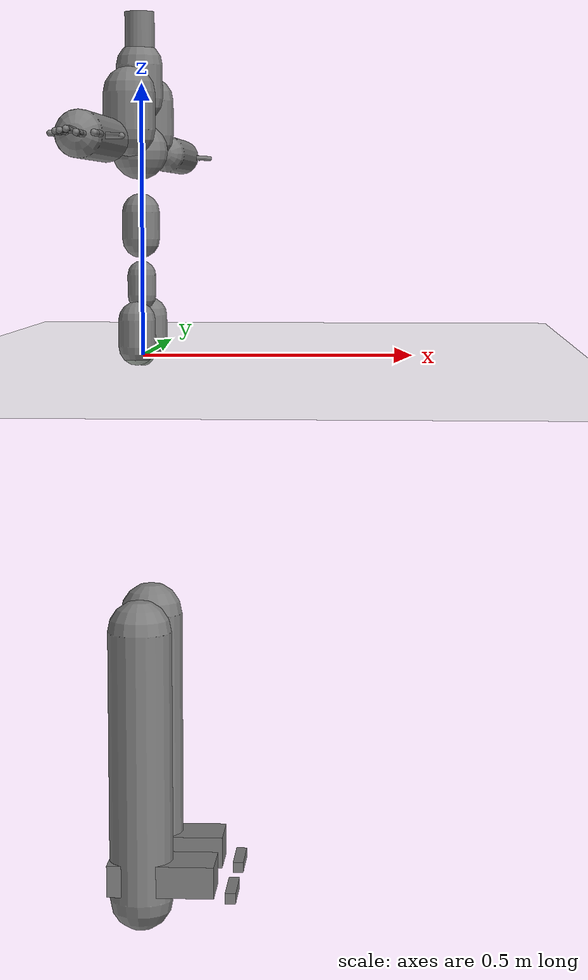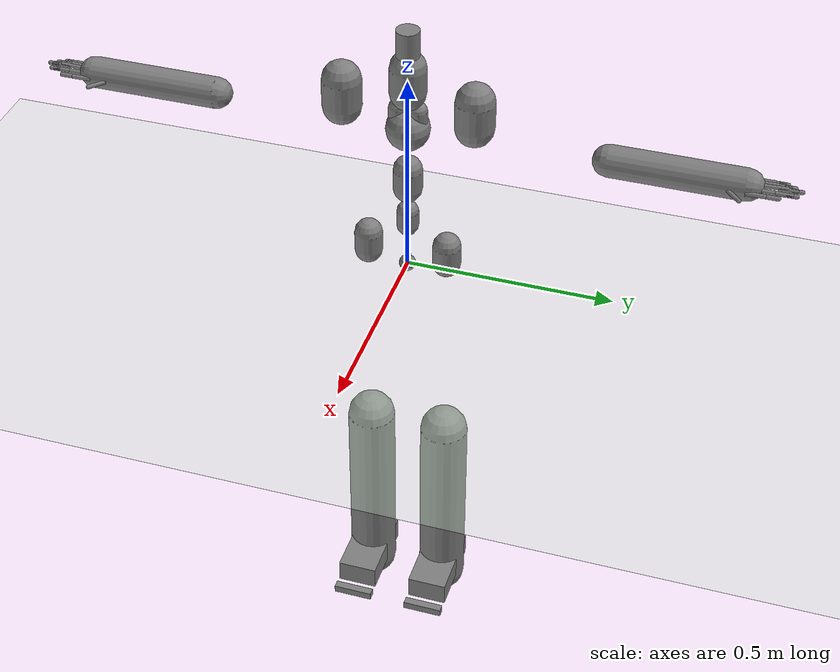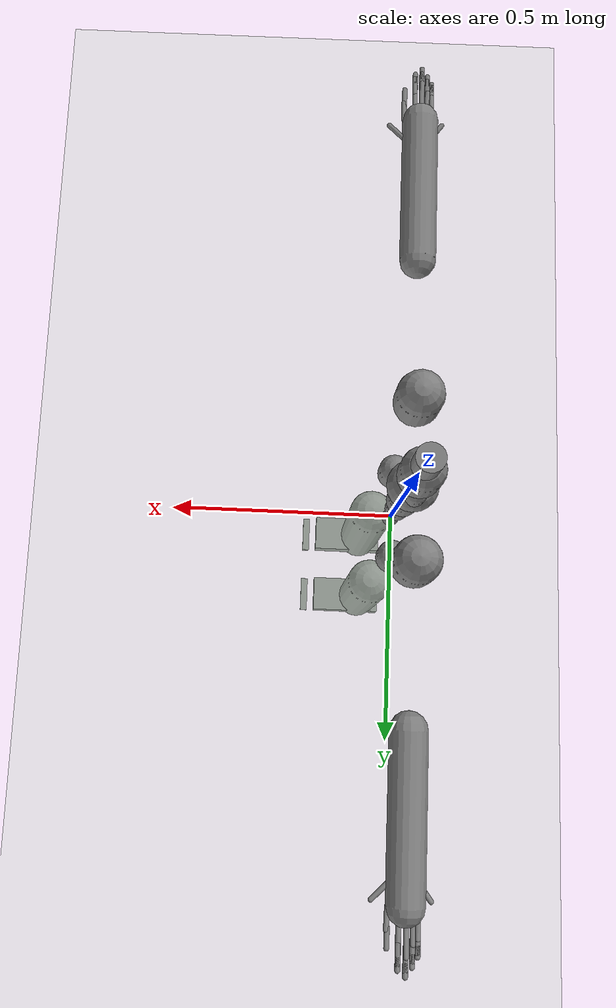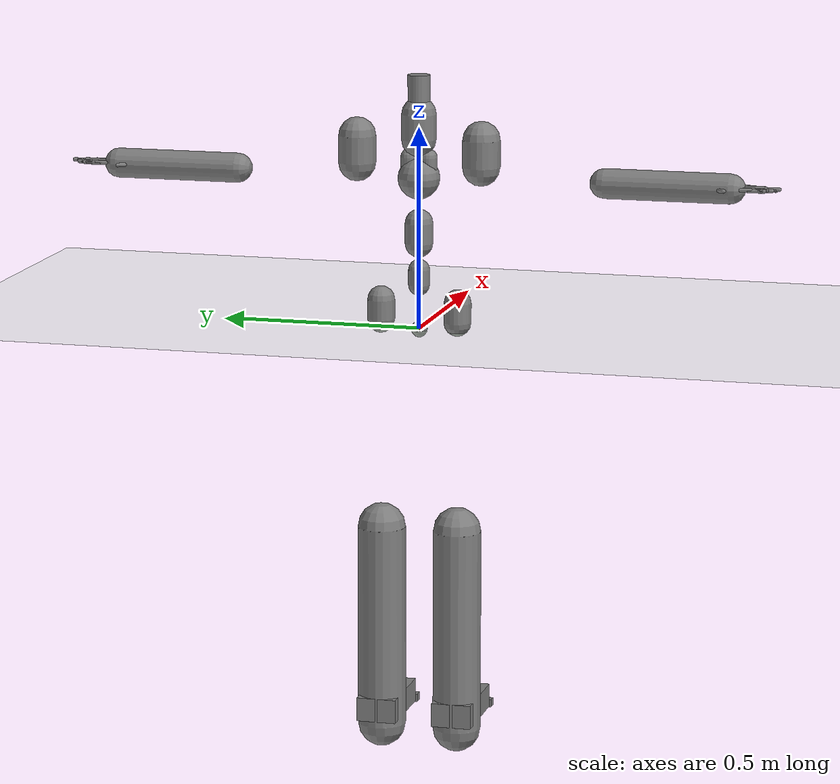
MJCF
<?xml version="1.0" ?>
<mujoco model="humanoid">
  <compiler coordinate="local"/>
  <statistic extent="2" center="0 0 1"/>
  <option timestep="0.00555"/>
  <default>
    <motor ctrlrange="-1 1" ctrllimited="true"/>
    <geom type="capsule" condim="1" friction="1.0 0.05 0.05" solimp=".9 .99 .003" solref=".015 1"/>
    <joint type="hinge" damping="0.1" stiffness="5" armature=".007" limited="true" solimplimit="0 .99 .01"/>
    <site size=".04" group="3"/>
  </default>
  <asset>
    <texture type="skybox" builtin="gradient" rgb1=".4 .5 .6" rgb2="0 0 0" width="100" height="100"/>
    <texture builtin="flat" height="1278" mark="cross" markrgb="1 1 1" name="texgeom" random="0.01" rgb1="0.8 0.6 0.4" rgb2="0.8 0.6 0.4" type="cube" width="127"/>
    <texture builtin="checker" height="100" name="texplane" rgb1="0 0 0" rgb2="0.8 0.8 0.8" type="2d" width="100"/>
    <material name="MatPlane" reflectance="0.5" shininess="1" specular="1" texrepeat="60 60" texture="texplane"/>
    <material name="geom" texture="texgeom" texuniform="true"/>
  </asset>
  <worldbody>
    <light cutoff="100" diffuse="1 1 1" dir="-0 0 -1.3" directional="true" exponent="1" pos="0 0 1.3" specular=".1 .1 .1"/>
    <geom conaffinity="1" condim="3" name="floor" pos="0 0 0" rgba="0.8 0.9 0.8 1" size="100 100 .2" type="plane" material="MatPlane"/>
    <body name="pHipOrigin" pos="0 0 0">
      <freejoint name="pHipOrigin"/>
      <geom type="sphere" contype="1" conaffinity="1" density="4629.6296296296305" size="0.02002" pos="0.0000 0.0000 -0.0000"/>
      <body name="jL5S1" pos="-0.00225623 0 0.02030606">
        <geom type="sphere" contype="1" conaffinity="1" density="1000" size="0.00817" pos="0 0 0"/>
        <joint name="jL5S1_x" type="hinge" pos="0 0 0" axis="1 0 0" stiffness="500" damping="500" armature="0.02" range="-180.0000 180.0000"/>
        <joint name="jL5S1_y" type="hinge" pos="0 0 0" axis="0 1 0" stiffness="500" damping="500" armature="0.02" range="-180.0000 180.0000"/>
        <joint name="jL5S1_z" type="hinge" pos="0 0 0" axis="0 0 1" stiffness="500" damping="500" armature="0.02" range="-180.0000 180.0000"/>
        <body name="jL4L3" pos="0 0 0.07537297">
          <geom type="capsule" contype="1" conaffinity="1" density="1000" fromto="0 0 0.01507 0 0 0.05276" size="0.02638"/>
          <joint name="jL4L3_x" type="hinge" pos="0 0 0" axis="1 0 0" stiffness="500" damping="500" armature="0.02" range="-180.0000 180.0000"/>
          <joint name="jL4L3_y" type="hinge" pos="0 0 0" axis="0 1 0" stiffness="500" damping="500" armature="0.02" range="-180.0000 180.0000"/>
          <joint name="jL4L3_z" type="hinge" pos="0 0 0" axis="0 0 1" stiffness="500" damping="500" armature="0.02" range="-180.0000 180.0000"/>
          <body name="jL1T12" pos="-0.00076616 0 0.09930757">
            <geom type="capsule" contype="1" conaffinity="1" density="1000" fromto="0 0 0.01986 0 0 0.06952" size="0.03476"/>
            <joint name="jL1T12_x" type="hinge" pos="0 0 0" axis="1 0 0" stiffness="500" damping="500" armature="0.02" range="-180.0000 180.0000"/>
            <joint name="jL1T12_y" type="hinge" pos="0 0 0" axis="0 1 0" stiffness="500" damping="500" armature="0.02" range="-180.0000 180.0000"/>
            <joint name="jL1T12_z" type="hinge" pos="0 0 0" axis="0 0 1" stiffness="500" damping="500" armature="0.02" range="-180.0000 180.0000"/>
            <body name="jT9T8" pos="-0.00100040 0 0.12941781">
              <geom type="sphere" contype="1" conaffinity="1" density="1000" size="0.05177" pos="0.000 0.0000 0.051769"/>
              <joint name="jT9T8_x" type="hinge" pos="0 0 0" axis="1 0 0" stiffness="500" damping="500" armature="0.02" range="-180.0000 180.0000"/>
              <joint name="jT9T8_y" type="hinge" pos="0 0 0" axis="0 1 0" stiffness="500" damping="500" armature="0.02" range="-180.0000 180.0000"/>
              <joint name="jT9T8_z" type="hinge" pos="0 0 0" axis="0 0 1" stiffness="500" damping="500" armature="0.02" range="-180.0000 180.0000"/>
              <body name="jT1C7" pos="0 0 0.12248200">
                <geom type="capsule" contype="1" conaffinity="1" density="1000" fromto="0 0 0.02450 0 0 0.08574" size="0.04287"/>
                <joint name="jT1C7_x" type="hinge" pos="0 0 0" axis="1 0 0" stiffness="500" damping="500" armature="0.02" range="-180.0000 180.0000"/>
                <joint name="jT1C7_y" type="hinge" pos="0 0 0" axis="0 1 0" stiffness="500" damping="500" armature="0.02" range="-180.0000 180.0000"/>
                <joint name="jT1C7_z" type="hinge" pos="0 0 0" axis="0 0 1" stiffness="500" damping="500" armature="0.02" range="-180.0000 180.0000"/>
                <body name="jC1Head" pos="0.00107619 0 0.09122090">
                  <geom type="cylinder" contype="1" conaffinity="1" density="1000" fromto="0 0 0 0 0 0.09123" size="0.02737"/>
                  <joint name="jC1Head_x" type="hinge" pos="0 0 0" axis="1 0 0" stiffness="500" damping="500" armature="0.02" range="-180.0000 180.0000"/>
                  <joint name="jC1Head_y" type="hinge" pos="0 0 0" axis="0 1 0" stiffness="500" damping="500" armature="0.02" range="-180.0000 180.0000"/>
                  <joint name="jC1Head_z" type="hinge" pos="0 0 0" axis="0 0 1" stiffness="500" damping="500" armature="0.02" range="-180.0000 180.0000"/>
                </body>
              </body>
              <body name="jRightT4Shoulder" pos="0 -0.02392914 0.05834450">
                <geom type="capsule" contype="1" conaffinity="1" density="1000" fromto="0 0 0.01261 0 0 0.04414" size="0.02207"/>
                <joint name="jRightT4Shoulder_x" type="hinge" pos="0 0 0" axis="1 0 0" stiffness="500" damping="500" armature="0.02" range="-180.0000 180.0000"/>
                <joint name="jRightT4Shoulder_y" type="hinge" pos="0 0 0" axis="0 1 0" stiffness="500" damping="500" armature="0.02" range="-180.0000 180.0000"/>
                <joint name="jRightT4Shoulder_z" type="hinge" pos="0 0 0" axis="0 0 1" stiffness="500" damping="500" armature="0.02" range="-180.0000 180.0000"/>
                <body name="jRightShoulder" pos="0 -0.13263507 0">
                  <geom type="capsule" contype="1" conaffinity="1" density="1000" fromto="0 0 0.02653 0 0 0.09284" size="0.04642"/>
                  <joint name="jRightShoulder_x" type="hinge" pos="0 0 0" axis="1 0 0" stiffness="500" damping="500" armature="0.02" range="-180.0000 180.0000"/>
                  <joint name="jRightShoulder_y" type="hinge" pos="0 0 0" axis="0 1 0" stiffness="500" damping="500" armature="0.02" range="-180.0000 180.0000"/>
                  <joint name="jRightShoulder_z" type="hinge" pos="0 0 0" axis="0 0 1" stiffness="500" damping="500" armature="0.02" range="-180.0000 180.0000"/>
                  <body name="jRightElbow" pos="0 -0.30660340 0">
                    <geom type="capsule" contype="1" conaffinity="1" density="1000" fromto="0 0 0 0.00000000 -0.30660340 0.00000000" size="0.03679"/>
                    <joint name="jRightElbow_x" type="hinge" pos="0 0 0" axis="1 0 0" stiffness="500" damping="500" armature="0.02" range="-180.0000 180.0000"/>
                    <joint name="jRightElbow_y" type="hinge" pos="0 0 0" axis="0 1 0" stiffness="500" damping="500" armature="0.02" range="-180.0000 180.0000"/>
                    <joint name="jRightElbow_z" type="hinge" pos="0 0 0" axis="0 0 1" stiffness="500" damping="500" armature="0.02" range="-180.0000 180.0000"/>
                    <body name="jRightWrist" pos="0.00009505 -0.23615279 0">
                      <geom density="1000" type="box" pos="0 0 0" size="0.035 0.03 0.01" quat="1.0000 0.0000 0.0000 0.0000"/>
                      <joint name="jRightWrist_x" type="hinge" pos="0 0 0" axis="1 0 0" stiffness="500" damping="500" armature="0.02" range="-180.0000 180.0000"/>
                      <joint name="jRightWrist_y" type="hinge" pos="0 0 0" axis="0 1 0" stiffness="500" damping="500" armature="0.02" range="-180.0000 180.0000"/>
                      <joint name="jRightWrist_z" type="hinge" pos="0 0 0" axis="0 0 1" stiffness="500" damping="500" armature="0.02" range="-180.0000 180.0000"/>
                      <body name="jRightFirstCMC" pos="0.03172480 -0.03041000 -0.00143669">
                        <geom type="capsule" contype="1" conaffinity="1" density="1000" fromto="0 0 0 0.03172480 -0.03041000 -0.00143669" size="0.005"/>
                        <joint name="jRightFirstCMC_x" type="hinge" pos="0 0 0" axis="1 0 0" stiffness="500" damping="500" armature="0.02" range="-180.0000 180.0000"/>
                        <joint name="jRightFirstCMC_y" type="hinge" pos="0 0 0" axis="0 1 0" stiffness="500" damping="500" armature="0.02" range="-180.0000 180.0000"/>
                        <joint name="jRightFirstCMC_z" type="hinge" pos="0 0 0" axis="0 0 1" stiffness="500" damping="500" armature="0.02" range="-180.0000 180.0000"/>
                        <body name="jRightFirstMCP" pos="0.00143211 -0.04041321 0.00085393">
                          <geom type="capsule" contype="1" conaffinity="1" density="1000" fromto="0 0 0 0.00143211 -0.04041321 0.00085393" size="0.005"/>
                          <joint name="jRightFirstMCP_x" type="hinge" pos="0 0 0" axis="1 0 0" stiffness="500" damping="500" armature="0.02" range="-180.0000 180.0000"/>
                          <joint name="jRightFirstMCP_y" type="hinge" pos="0 0 0" axis="0 1 0" stiffness="500" damping="500" armature="0.02" range="-180.0000 180.0000"/>
                          <joint name="jRightFirstMCP_z" type="hinge" pos="0 0 0" axis="0 0 1" stiffness="500" damping="500" armature="0.02" range="-180.0000 180.0000"/>
                          <body name="jRightIP" pos="0 -0.03551648 0">
                            <geom type="capsule" contype="1" conaffinity="1" density="1000" fromto="0 0 0 0.00000000 -0.03551648 0.00000000" size="0.005"/>
                            <joint name="jRightIP_x" type="hinge" pos="0 0 0" axis="1 0 0" stiffness="500" damping="500" armature="0.02" range="-180.0000 180.0000"/>
                            <joint name="jRightIP_y" type="hinge" pos="0 0 0" axis="0 1 0" stiffness="500" damping="500" armature="0.02" range="-180.0000 180.0000"/>
                            <joint name="jRightIP_z" type="hinge" pos="0 0 0" axis="0 0 1" stiffness="500" damping="500" armature="0.02" range="-180.0000 180.0000"/>
                          </body>
                        </body>
                      </body>
                      <body name="jRightSecondCMC" pos="0.01218595 -0.03560350 -0.00062101">
                        <geom type="capsule" contype="1" conaffinity="1" density="1000" fromto="0 0 0 0.01218595 -0.03560350 -0.00062101" size="0.005"/>
                        <joint name="jRightSecondCMC_x" type="hinge" pos="0 0 0" axis="1 0 0" stiffness="500" damping="500" armature="0.02" range="-180.0000 180.0000"/>
                        <joint name="jRightSecondCMC_y" type="hinge" pos="0 0 0" axis="0 1 0" stiffness="500" damping="500" armature="0.02" range="-180.0000 180.0000"/>
                        <joint name="jRightSecondCMC_z" type="hinge" pos="0 0 0" axis="0 0 1" stiffness="500" damping="500" armature="0.02" range="-180.0000 180.0000"/>
                        <body name="jRightSecondMCP" pos="-0.00037114 -0.05919456 -0.00061404">
                          <geom type="capsule" contype="1" conaffinity="1" density="1000" fromto="0 0 0 -0.00037114 -0.05919456 -0.00061404" size="0.005"/>
                          <joint name="jRightSecondMCP_x" type="hinge" pos="0 0 0" axis="1 0 0" stiffness="500" damping="500" armature="0.02" range="-180.0000 180.0000"/>
                          <joint name="jRightSecondMCP_y" type="hinge" pos="0 0 0" axis="0 1 0" stiffness="500" damping="500" armature="0.02" range="-180.0000 180.0000"/>
                          <joint name="jRightSecondMCP_z" type="hinge" pos="0 0 0" axis="0 0 1" stiffness="500" damping="500" armature="0.02" range="-180.0000 180.0000"/>
                          <body name="jRightSecondPIP" pos="0 -0.03844699 0">
                            <geom type="capsule" contype="1" conaffinity="1" density="1000" fromto="0 0 0 0.00000000 -0.03844699 0.00000000" size="0.005"/>
                            <joint name="jRightSecondPIP_x" type="hinge" pos="0 0 0" axis="1 0 0" stiffness="500" damping="500" armature="0.02" range="-180.0000 180.0000"/>
                            <joint name="jRightSecondPIP_y" type="hinge" pos="0 0 0" axis="0 1 0" stiffness="500" damping="500" armature="0.02" range="-180.0000 180.0000"/>
                            <joint name="jRightSecondPIP_z" type="hinge" pos="0 0 0" axis="0 0 1" stiffness="500" damping="500" armature="0.02" range="-180.0000 180.0000"/>
                            <body name="jRightSecondDIP" pos="0 -0.02288698 0">
                              <geom type="capsule" contype="1" conaffinity="1" density="1000" fromto="0 0 0 0.00000000 -0.02288698 0.00000000" size="0.005"/>
                              <joint name="jRightSecondDIP_x" type="hinge" pos="0 0 0" axis="1 0 0" stiffness="500" damping="500" armature="0.02" range="-180.0000 180.0000"/>
                              <joint name="jRightSecondDIP_y" type="hinge" pos="0 0 0" axis="0 1 0" stiffness="500" damping="500" armature="0.02" range="-180.0000 180.0000"/>
                              <joint name="jRightSecondDIP_z" type="hinge" pos="0 0 0" axis="0 0 1" stiffness="500" damping="500" armature="0.02" range="-180.0000 180.0000"/>
                            </body>
                          </body>
                        </body>
                      </body>
                      <body name="jRightThirdCMC" pos="-0.00069141 -0.03738989 0.00157193">
                        <geom type="capsule" contype="1" conaffinity="1" density="1000" fromto="0 0 0 -0.00069141 -0.03738989 0.00157193" size="0.005"/>
                        <joint name="jRightThirdCMC_x" type="hinge" pos="0 0 0" axis="1 0 0" stiffness="500" damping="500" armature="0.02" range="-180.0000 180.0000"/>
                        <joint name="jRightThirdCMC_y" type="hinge" pos="0 0 0" axis="0 1 0" stiffness="500" damping="500" armature="0.02" range="-180.0000 180.0000"/>
                        <joint name="jRightThirdCMC_z" type="hinge" pos="0 0 0" axis="0 0 1" stiffness="500" damping="500" armature="0.02" range="-180.0000 180.0000"/>
                        <body name="jRightThirdMCP" pos="-0.00071580 -0.05930384 0.00161343">
                          <geom type="capsule" contype="1" conaffinity="1" density="1000" fromto="0 0 0 -0.00071580 -0.05930384 0.00161343" size="0.005"/>
                          <joint name="jRightThirdMCP_x" type="hinge" pos="0 0 0" axis="1 0 0" stiffness="500" damping="500" armature="0.02" range="-180.0000 180.0000"/>
                          <joint name="jRightThirdMCP_y" type="hinge" pos="0 0 0" axis="0 1 0" stiffness="500" damping="500" armature="0.02" range="-180.0000 180.0000"/>
                          <joint name="jRightThirdMCP_z" type="hinge" pos="0 0 0" axis="0 0 1" stiffness="500" damping="500" armature="0.02" range="-180.0000 180.0000"/>
                          <body name="jRightThirdPIP" pos="0 -0.04199645 0">
                            <geom type="capsule" contype="1" conaffinity="1" density="1000" fromto="0 0 0 0.00000000 -0.04199645 0.00000000" size="0.005"/>
                            <joint name="jRightThirdPIP_x" type="hinge" pos="0 0 0" axis="1 0 0" stiffness="500" damping="500" armature="0.02" range="-180.0000 180.0000"/>
                            <joint name="jRightThirdPIP_y" type="hinge" pos="0 0 0" axis="0 1 0" stiffness="500" damping="500" armature="0.02" range="-180.0000 180.0000"/>
                            <joint name="jRightThirdPIP_z" type="hinge" pos="0 0 0" axis="0 0 1" stiffness="500" damping="500" armature="0.02" range="-180.0000 180.0000"/>
                            <body name="jRightThirdDIP" pos="0 -0.02483948 0">
                              <geom type="capsule" contype="1" conaffinity="1" density="1000" fromto="0 0 0 0.00000000 -0.02483948 0.00000000" size="0.005"/>
                              <joint name="jRightThirdDIP_x" type="hinge" pos="0 0 0" axis="1 0 0" stiffness="500" damping="500" armature="0.02" range="-180.0000 180.0000"/>
                              <joint name="jRightThirdDIP_y" type="hinge" pos="0 0 0" axis="0 1 0" stiffness="500" damping="500" armature="0.02" range="-180.0000 180.0000"/>
                              <joint name="jRightThirdDIP_z" type="hinge" pos="0 0 0" axis="0 0 1" stiffness="500" damping="500" armature="0.02" range="-180.0000 180.0000"/>
                            </body>
                          </body>
                        </body>
                      </body>
                      <body name="jRightFourthCMC" pos="-0.01258502 -0.03505136 0.00082505">
                        <geom type="capsule" contype="1" conaffinity="1" density="1000" fromto="0 0 0 -0.01258502 -0.03505136 0.00082505" size="0.005"/>
                        <joint name="jRightFourthCMC_x" type="hinge" pos="0 0 0" axis="1 0 0" stiffness="500" damping="500" armature="0.02" range="-180.0000 180.0000"/>
                        <joint name="jRightFourthCMC_y" type="hinge" pos="0 0 0" axis="0 1 0" stiffness="500" damping="500" armature="0.02" range="-180.0000 180.0000"/>
                        <joint name="jRightFourthCMC_z" type="hinge" pos="0 0 0" axis="0 0 1" stiffness="500" damping="500" armature="0.02" range="-180.0000 180.0000"/>
                        <body name="jRightFourthMCP" pos="-0.00036521 -0.05005516 0.00078641">
                          <geom type="capsule" contype="1" conaffinity="1" density="1000" fromto="0 0 0 -0.00036521 -0.05005516 0.00078641" size="0.005"/>
                          <joint name="jRightFourthMCP_x" type="hinge" pos="0 0 0" axis="1 0 0" stiffness="500" damping="500" armature="0.02" range="-180.0000 180.0000"/>
                          <joint name="jRightFourthMCP_y" type="hinge" pos="0 0 0" axis="0 1 0" stiffness="500" damping="500" armature="0.02" range="-180.0000 180.0000"/>
                          <joint name="jRightFourthMCP_z" type="hinge" pos="0 0 0" axis="0 0 1" stiffness="500" damping="500" armature="0.02" range="-180.0000 180.0000"/>
                          <body name="jRightFourthPIP" pos="0 -0.03999694 0">
                            <geom type="capsule" contype="1" conaffinity="1" density="1000" fromto="0 0 0 0.00000000 -0.03999694 0.00000000" size="0.005"/>
                            <joint name="jRightFourthPIP_x" type="hinge" pos="0 0 0" axis="1 0 0" stiffness="500" damping="500" armature="0.02" range="-180.0000 180.0000"/>
                            <joint name="jRightFourthPIP_y" type="hinge" pos="0 0 0" axis="0 1 0" stiffness="500" damping="500" armature="0.02" range="-180.0000 180.0000"/>
                            <joint name="jRightFourthPIP_z" type="hinge" pos="0 0 0" axis="0 0 1" stiffness="500" damping="500" armature="0.02" range="-180.0000 180.0000"/>
                            <body name="jRightFourthDIP" pos="0 -0.02366671 0">
                              <geom type="capsule" contype="1" conaffinity="1" density="1000" fromto="0 0 0 0.00000000 -0.02366671 0.00000000" size="0.005"/>
                              <joint name="jRightFourthDIP_x" type="hinge" pos="0 0 0" axis="1 0 0" stiffness="500" damping="500" armature="0.02" range="-180.0000 180.0000"/>
                              <joint name="jRightFourthDIP_y" type="hinge" pos="0 0 0" axis="0 1 0" stiffness="500" damping="500" armature="0.02" range="-180.0000 180.0000"/>
                              <joint name="jRightFourthDIP_z" type="hinge" pos="0 0 0" axis="0 0 1" stiffness="500" damping="500" armature="0.02" range="-180.0000 180.0000"/>
                            </body>
                          </body>
                        </body>
                      </body>
                      <body name="jRightFifthCMC" pos="-0.02218932 -0.03091829 0.00060992">
                        <geom type="capsule" contype="1" conaffinity="1" density="1000" fromto="0 0 0 -0.02218932 -0.03091829 0.00060992" size="0.005"/>
                        <joint name="jRightFifthCMC_x" type="hinge" pos="0 0 0" axis="1 0 0" stiffness="500" damping="500" armature="0.02" range="-180.0000 180.0000"/>
                        <joint name="jRightFifthCMC_y" type="hinge" pos="0 0 0" axis="0 1 0" stiffness="500" damping="500" armature="0.02" range="-180.0000 180.0000"/>
                        <joint name="jRightFifthCMC_z" type="hinge" pos="0 0 0" axis="0 0 1" stiffness="500" damping="500" armature="0.02" range="-180.0000 180.0000"/>
                        <body name="jRightFifthMCP" pos="-0.00000703 -0.04756963 0.00065462">
                          <geom type="capsule" contype="1" conaffinity="1" density="1000" fromto="0 0 0 -0.00000703 -0.04756963 0.00065462" size="0.005"/>
                          <joint name="jRightFifthMCP_x" type="hinge" pos="0 0 0" axis="1 0 0" stiffness="500" damping="500" armature="0.02" range="-180.0000 180.0000"/>
                          <joint name="jRightFifthMCP_y" type="hinge" pos="0 0 0" axis="0 1 0" stiffness="500" damping="500" armature="0.02" range="-180.0000 180.0000"/>
                          <joint name="jRightFifthMCP_z" type="hinge" pos="0 0 0" axis="0 0 1" stiffness="500" damping="500" armature="0.02" range="-180.0000 180.0000"/>
                          <body name="jRightFifthPIP" pos="0 -0.03641246 0">
                            <geom type="capsule" contype="1" conaffinity="1" density="1000" fromto="0 0 0 0.00000000 -0.03641246 0.00000000" size="0.005"/>
                            <joint name="jRightFifthPIP_x" type="hinge" pos="0 0 0" axis="1 0 0" stiffness="500" damping="500" armature="0.02" range="-180.0000 180.0000"/>
                            <joint name="jRightFifthPIP_y" type="hinge" pos="0 0 0" axis="0 1 0" stiffness="500" damping="500" armature="0.02" range="-180.0000 180.0000"/>
                            <joint name="jRightFifthPIP_z" type="hinge" pos="0 0 0" axis="0 0 1" stiffness="500" damping="500" armature="0.02" range="-180.0000 180.0000"/>
                            <body name="jRightFifthDIP" pos="0 -0.02014786 0">
                              <geom type="capsule" contype="1" conaffinity="1" density="1000" fromto="0 0 0 0.00000000 -0.02014786 0.00000000" size="0.005"/>
                              <joint name="jRightFifthDIP_x" type="hinge" pos="0 0 0" axis="1 0 0" stiffness="500" damping="500" armature="0.02" range="-180.0000 180.0000"/>
                              <joint name="jRightFifthDIP_y" type="hinge" pos="0 0 0" axis="0 1 0" stiffness="500" damping="500" armature="0.02" range="-180.0000 180.0000"/>
                              <joint name="jRightFifthDIP_z" type="hinge" pos="0 0 0" axis="0 0 1" stiffness="500" damping="500" armature="0.02" range="-180.0000 180.0000"/>
                            </body>
                          </body>
                        </body>
                      </body>
                    </body>
                  </body>
                </body>
              </body>
              <body name="jLeftT4Shoulder" pos="0 0.02383090 0.05810495">
                <geom type="capsule" contype="1" conaffinity="1" density="1000" fromto="0 0 0.01256 0 0 0.04396" size="0.02198"/>
                <joint name="jLeftT4Shoulder_x" type="hinge" pos="0 0 0" axis="1 0 0" stiffness="500" damping="500" armature="0.02" range="-180.0000 180.0000"/>
                <joint name="jLeftT4Shoulder_y" type="hinge" pos="0 0 0" axis="0 1 0" stiffness="500" damping="500" armature="0.02" range="-180.0000 180.0000"/>
                <joint name="jLeftT4Shoulder_z" type="hinge" pos="0 0 0" axis="0 0 1" stiffness="500" damping="500" armature="0.02" range="-180.0000 180.0000"/>
                <body name="jLeftShoulder" pos="0 0.13205378 0">
                  <geom type="capsule" contype="1" conaffinity="1" density="1000" fromto="0 0 0.02641 0 0 0.09244" size="0.04622"/>
                  <joint name="jLeftShoulder_x" type="hinge" pos="0 0 0" axis="1 0 0" stiffness="500" damping="500" armature="0.02" range="-180.0000 180.0000"/>
                  <joint name="jLeftShoulder_y" type="hinge" pos="0 0 0" axis="0 1 0" stiffness="500" damping="500" armature="0.02" range="-180.0000 180.0000"/>
                  <joint name="jLeftShoulder_z" type="hinge" pos="0 0 0" axis="0 0 1" stiffness="500" damping="500" armature="0.02" range="-180.0000 180.0000"/>
                  <body name="jLeftElbow" pos="0 0.30642402 0">
                    <geom type="capsule" contype="1" conaffinity="1" density="1000" fromto="0 0 0 0.00000000 0.30642402 0.00000000" size="0.03677"/>
                    <joint name="jLeftElbow_x" type="hinge" pos="0 0 0" axis="1 0 0" stiffness="500" damping="500" armature="0.02" range="-180.0000 180.0000"/>
                    <joint name="jLeftElbow_y" type="hinge" pos="0 0 0" axis="0 1 0" stiffness="500" damping="500" armature="0.02" range="-180.0000 180.0000"/>
                    <joint name="jLeftElbow_z" type="hinge" pos="0 0 0" axis="0 0 1" stiffness="500" damping="500" armature="0.02" range="-180.0000 180.0000"/>
                    <body name="jLeftWrist" pos="0.00009492 0.23584346 0">
                      <geom density="1000" type="box" pos="0 0 0" size="0.035 0.03 0.01" quat="1.0000 0.0000 0.0000 0.0000"/>
                      <joint name="jLeftWrist_x" type="hinge" pos="0 0 0" axis="1 0 0" stiffness="500" damping="500" armature="0.02" range="-180.0000 180.0000"/>
                      <joint name="jLeftWrist_y" type="hinge" pos="0 0 0" axis="0 1 0" stiffness="500" damping="500" armature="0.02" range="-180.0000 180.0000"/>
                      <joint name="jLeftWrist_z" type="hinge" pos="0 0 0" axis="0 0 1" stiffness="500" damping="500" armature="0.02" range="-180.0000 180.0000"/>
                      <body name="jLeftFirstCMC" pos="0.03105110 0.03112443 -0.00138975">
                        <geom type="capsule" contype="1" conaffinity="1" density="1000" fromto="0 0 0 0.03105110 0.03112443 -0.00138975" size="0.005"/>
                        <joint name="jLeftFirstCMC_x" type="hinge" pos="0 0 0" axis="1 0 0" stiffness="500" damping="500" armature="0.02" range="-180.0000 180.0000"/>
                        <joint name="jLeftFirstCMC_y" type="hinge" pos="0 0 0" axis="0 1 0" stiffness="500" damping="500" armature="0.02" range="-180.0000 180.0000"/>
                        <joint name="jLeftFirstCMC_z" type="hinge" pos="0 0 0" axis="0 0 1" stiffness="500" damping="500" armature="0.02" range="-180.0000 180.0000"/>
                        <body name="jLeftFirstMCP" pos="0.00141832 0.04041230 0.00083219">
                          <geom type="capsule" contype="1" conaffinity="1" density="1000" fromto="0 0 0 0.00141832 0.04041230 0.00083219" size="0.005"/>
                          <joint name="jLeftFirstMCP_x" type="hinge" pos="0 0 0" axis="1 0 0" stiffness="500" damping="500" armature="0.02" range="-180.0000 180.0000"/>
                          <joint name="jLeftFirstMCP_y" type="hinge" pos="0 0 0" axis="0 1 0" stiffness="500" damping="500" armature="0.02" range="-180.0000 180.0000"/>
                          <joint name="jLeftFirstMCP_z" type="hinge" pos="0 0 0" axis="0 0 1" stiffness="500" damping="500" armature="0.02" range="-180.0000 180.0000"/>
                          <body name="jLeftIP" pos="0 0.03551648 0">
                            <geom type="capsule" contype="1" conaffinity="1" density="1000" fromto="0 0 0 0.00000000 0.03551648 0.00000000" size="0.005"/>
                            <joint name="jLeftIP_x" type="hinge" pos="0 0 0" axis="1 0 0" stiffness="500" damping="500" armature="0.02" range="-180.0000 180.0000"/>
                            <joint name="jLeftIP_y" type="hinge" pos="0 0 0" axis="0 1 0" stiffness="500" damping="500" armature="0.02" range="-180.0000 180.0000"/>
                            <joint name="jLeftIP_z" type="hinge" pos="0 0 0" axis="0 0 1" stiffness="500" damping="500" armature="0.02" range="-180.0000 180.0000"/>
                          </body>
                        </body>
                      </body>
                      <body name="jLeftSecondCMC" pos="0.01232632 0.03553799 -0.00062614">
                        <geom type="capsule" contype="1" conaffinity="1" density="1000" fromto="0 0 0 0.01232632 0.03553799 -0.00062614" size="0.005"/>
                        <joint name="jLeftSecondCMC_x" type="hinge" pos="0 0 0" axis="1 0 0" stiffness="500" damping="500" armature="0.02" range="-180.0000 180.0000"/>
                        <joint name="jLeftSecondCMC_y" type="hinge" pos="0 0 0" axis="0 1 0" stiffness="500" damping="500" armature="0.02" range="-180.0000 180.0000"/>
                        <joint name="jLeftSecondCMC_z" type="hinge" pos="0 0 0" axis="0 0 1" stiffness="500" damping="500" armature="0.02" range="-180.0000 180.0000"/>
                        <body name="jLeftSecondMCP" pos="-0.00032361 0.05919578 -0.00062163">
                          <geom type="capsule" contype="1" conaffinity="1" density="1000" fromto="0 0 0 -0.00032361 0.05919578 -0.00062163" size="0.005"/>
                          <joint name="jLeftSecondMCP_x" type="hinge" pos="0 0 0" axis="1 0 0" stiffness="500" damping="500" armature="0.02" range="-180.0000 180.0000"/>
                          <joint name="jLeftSecondMCP_y" type="hinge" pos="0 0 0" axis="0 1 0" stiffness="500" damping="500" armature="0.02" range="-180.0000 180.0000"/>
                          <joint name="jLeftSecondMCP_z" type="hinge" pos="0 0 0" axis="0 0 1" stiffness="500" damping="500" armature="0.02" range="-180.0000 180.0000"/>
                          <body name="jLeftSecondPIP" pos="0 0.03844699 0">
                            <geom type="capsule" contype="1" conaffinity="1" density="1000" fromto="0 0 0 0.00000000 0.03844699 0.00000000" size="0.005"/>
                            <joint name="jLeftSecondPIP_x" type="hinge" pos="0 0 0" axis="1 0 0" stiffness="500" damping="500" armature="0.02" range="-180.0000 180.0000"/>
                            <joint name="jLeftSecondPIP_y" type="hinge" pos="0 0 0" axis="0 1 0" stiffness="500" damping="500" armature="0.02" range="-180.0000 180.0000"/>
                            <joint name="jLeftSecondPIP_z" type="hinge" pos="0 0 0" axis="0 0 1" stiffness="500" damping="500" armature="0.02" range="-180.0000 180.0000"/>
                            <body name="jLeftSecondDIP" pos="0 0.02288698 0">
                              <geom type="capsule" contype="1" conaffinity="1" density="1000" fromto="0 0 0 0.00000000 0.02288698 0.00000000" size="0.005"/>
                              <joint name="jLeftSecondDIP_x" type="hinge" pos="0 0 0" axis="1 0 0" stiffness="500" damping="500" armature="0.02" range="-180.0000 180.0000"/>
                              <joint name="jLeftSecondDIP_y" type="hinge" pos="0 0 0" axis="0 1 0" stiffness="500" damping="500" armature="0.02" range="-180.0000 180.0000"/>
                              <joint name="jLeftSecondDIP_z" type="hinge" pos="0 0 0" axis="0 0 1" stiffness="500" damping="500" armature="0.02" range="-180.0000 180.0000"/>
                            </body>
                          </body>
                        </body>
                      </body>
                      <body name="jLeftThirdCMC" pos="-0.00069547 0.03739325 0.00151953">
                        <geom type="capsule" contype="1" conaffinity="1" density="1000" fromto="0 0 0 -0.00069547 0.03739325 0.00151953" size="0.005"/>
                        <joint name="jLeftThirdCMC_x" type="hinge" pos="0 0 0" axis="1 0 0" stiffness="500" damping="500" armature="0.02" range="-180.0000 180.0000"/>
                        <joint name="jLeftThirdCMC_y" type="hinge" pos="0 0 0" axis="0 1 0" stiffness="500" damping="500" armature="0.02" range="-180.0000 180.0000"/>
                        <joint name="jLeftThirdCMC_z" type="hinge" pos="0 0 0" axis="0 0 1" stiffness="500" damping="500" armature="0.02" range="-180.0000 180.0000"/>
                        <body name="jLeftThirdMCP" pos="-0.00072157 0.05930499 0.00158099">
                          <geom type="capsule" contype="1" conaffinity="1" density="1000" fromto="0 0 0 -0.00072157 0.05930499 0.00158099" size="0.005"/>
                          <joint name="jLeftThirdMCP_x" type="hinge" pos="0 0 0" axis="1 0 0" stiffness="500" damping="500" armature="0.02" range="-180.0000 180.0000"/>
                          <joint name="jLeftThirdMCP_y" type="hinge" pos="0 0 0" axis="0 1 0" stiffness="500" damping="500" armature="0.02" range="-180.0000 180.0000"/>
                          <joint name="jLeftThirdMCP_z" type="hinge" pos="0 0 0" axis="0 0 1" stiffness="500" damping="500" armature="0.02" range="-180.0000 180.0000"/>
                          <body name="jLeftThirdPIP" pos="0 0.04199645 0">
                            <geom type="capsule" contype="1" conaffinity="1" density="1000" fromto="0 0 0 0.00000000 0.04199645 0.00000000" size="0.005"/>
                            <joint name="jLeftThirdPIP_x" type="hinge" pos="0 0 0" axis="1 0 0" stiffness="500" damping="500" armature="0.02" range="-180.0000 180.0000"/>
                            <joint name="jLeftThirdPIP_y" type="hinge" pos="0 0 0" axis="0 1 0" stiffness="500" damping="500" armature="0.02" range="-180.0000 180.0000"/>
                            <joint name="jLeftThirdPIP_z" type="hinge" pos="0 0 0" axis="0 0 1" stiffness="500" damping="500" armature="0.02" range="-180.0000 180.0000"/>
                            <body name="jLeftThirdDIP" pos="0 0.02483948 0">
                              <geom type="capsule" contype="1" conaffinity="1" density="1000" fromto="0 0 0 0.00000000 0.02483948 0.00000000" size="0.005"/>
                              <joint name="jLeftThirdDIP_x" type="hinge" pos="0 0 0" axis="1 0 0" stiffness="500" damping="500" armature="0.02" range="-180.0000 180.0000"/>
                              <joint name="jLeftThirdDIP_y" type="hinge" pos="0 0 0" axis="0 1 0" stiffness="500" damping="500" armature="0.02" range="-180.0000 180.0000"/>
                              <joint name="jLeftThirdDIP_z" type="hinge" pos="0 0 0" axis="0 0 1" stiffness="500" damping="500" armature="0.02" range="-180.0000 180.0000"/>
                            </body>
                          </body>
                        </body>
                      </body>
                      <body name="jLeftFourthCMC" pos="-0.01304681 0.03487207 0.00088074">
                        <geom type="capsule" contype="1" conaffinity="1" density="1000" fromto="0 0 0 -0.01304681 0.03487207 0.00088074" size="0.005"/>
                        <joint name="jLeftFourthCMC_x" type="hinge" pos="0 0 0" axis="1 0 0" stiffness="500" damping="500" armature="0.02" range="-180.0000 180.0000"/>
                        <joint name="jLeftFourthCMC_y" type="hinge" pos="0 0 0" axis="0 1 0" stiffness="500" damping="500" armature="0.02" range="-180.0000 180.0000"/>
                        <joint name="jLeftFourthCMC_z" type="hinge" pos="0 0 0" axis="0 0 1" stiffness="500" damping="500" armature="0.02" range="-180.0000 180.0000"/>
                        <body name="jLeftFourthMCP" pos="-0.00039275 0.05005230 0.00083172">
                          <geom type="capsule" contype="1" conaffinity="1" density="1000" fromto="0 0 0 -0.00039275 0.05005230 0.00083172" size="0.005"/>
                          <joint name="jLeftFourthMCP_x" type="hinge" pos="0 0 0" axis="1 0 0" stiffness="500" damping="500" armature="0.02" range="-180.0000 180.0000"/>
                          <joint name="jLeftFourthMCP_y" type="hinge" pos="0 0 0" axis="0 1 0" stiffness="500" damping="500" armature="0.02" range="-180.0000 180.0000"/>
                          <joint name="jLeftFourthMCP_z" type="hinge" pos="0 0 0" axis="0 0 1" stiffness="500" damping="500" armature="0.02" range="-180.0000 180.0000"/>
                          <body name="jLeftFourthPIP" pos="0 0.03999694 0">
                            <geom type="capsule" contype="1" conaffinity="1" density="1000" fromto="0 0 0 0.00000000 0.03999694 0.00000000" size="0.005"/>
                            <joint name="jLeftFourthPIP_x" type="hinge" pos="0 0 0" axis="1 0 0" stiffness="500" damping="500" armature="0.02" range="-180.0000 180.0000"/>
                            <joint name="jLeftFourthPIP_y" type="hinge" pos="0 0 0" axis="0 1 0" stiffness="500" damping="500" armature="0.02" range="-180.0000 180.0000"/>
                            <joint name="jLeftFourthPIP_z" type="hinge" pos="0 0 0" axis="0 0 1" stiffness="500" damping="500" armature="0.02" range="-180.0000 180.0000"/>
                            <body name="jLeftFourthDIP" pos="0 0.02366671 0">
                              <geom type="capsule" contype="1" conaffinity="1" density="1000" fromto="0 0 0 0.00000000 0.02366671 0.00000000" size="0.005"/>
                              <joint name="jLeftFourthDIP_x" type="hinge" pos="0 0 0" axis="1 0 0" stiffness="500" damping="500" armature="0.02" range="-180.0000 180.0000"/>
                              <joint name="jLeftFourthDIP_y" type="hinge" pos="0 0 0" axis="0 1 0" stiffness="500" damping="500" armature="0.02" range="-180.0000 180.0000"/>
                              <joint name="jLeftFourthDIP_z" type="hinge" pos="0 0 0" axis="0 0 1" stiffness="500" damping="500" armature="0.02" range="-180.0000 180.0000"/>
                            </body>
                          </body>
                        </body>
                      </body>
                      <body name="jLeftFifthCMC" pos="-0.02286152 0.03042949 0.00061972">
                        <geom type="capsule" contype="1" conaffinity="1" density="1000" fromto="0 0 0 -0.02286152 0.03042949 0.00061972" size="0.005"/>
                        <joint name="jLeftFifthCMC_x" type="hinge" pos="0 0 0" axis="1 0 0" stiffness="500" damping="500" armature="0.02" range="-180.0000 180.0000"/>
                        <joint name="jLeftFifthCMC_y" type="hinge" pos="0 0 0" axis="0 1 0" stiffness="500" damping="500" armature="0.02" range="-180.0000 180.0000"/>
                        <joint name="jLeftFifthCMC_z" type="hinge" pos="0 0 0" axis="0 0 1" stiffness="500" damping="500" armature="0.02" range="-180.0000 180.0000"/>
                        <body name="jLeftFifthMCP" pos="-0.00001349 0.04756833 0.00068448">
                          <geom type="capsule" contype="1" conaffinity="1" density="1000" fromto="0 0 0 -0.00001349 0.04756833 0.00068448" size="0.005"/>
                          <joint name="jLeftFifthMCP_x" type="hinge" pos="0 0 0" axis="1 0 0" stiffness="500" damping="500" armature="0.02" range="-180.0000 180.0000"/>
                          <joint name="jLeftFifthMCP_y" type="hinge" pos="0 0 0" axis="0 1 0" stiffness="500" damping="500" armature="0.02" range="-180.0000 180.0000"/>
                          <joint name="jLeftFifthMCP_z" type="hinge" pos="0 0 0" axis="0 0 1" stiffness="500" damping="500" armature="0.02" range="-180.0000 180.0000"/>
                          <body name="jLeftFifthPIP" pos="0 0.03641246 0">
                            <geom type="capsule" contype="1" conaffinity="1" density="1000" fromto="0 0 0 0.00000000 0.03641246 0.00000000" size="0.005"/>
                            <joint name="jLeftFifthPIP_x" type="hinge" pos="0 0 0" axis="1 0 0" stiffness="500" damping="500" armature="0.02" range="-180.0000 180.0000"/>
                            <joint name="jLeftFifthPIP_y" type="hinge" pos="0 0 0" axis="0 1 0" stiffness="500" damping="500" armature="0.02" range="-180.0000 180.0000"/>
                            <joint name="jLeftFifthPIP_z" type="hinge" pos="0 0 0" axis="0 0 1" stiffness="500" damping="500" armature="0.02" range="-180.0000 180.0000"/>
                            <body name="jLeftFifthDIP" pos="0 0.02014786 0">
                              <geom type="capsule" contype="1" conaffinity="1" density="1000" fromto="0 0 0 0.00000000 0.02014786 0.00000000" size="0.005"/>
                              <joint name="jLeftFifthDIP_x" type="hinge" pos="0 0 0" axis="1 0 0" stiffness="500" damping="500" armature="0.02" range="-180.0000 180.0000"/>
                              <joint name="jLeftFifthDIP_y" type="hinge" pos="0 0 0" axis="0 1 0" stiffness="500" damping="500" armature="0.02" range="-180.0000 180.0000"/>
                              <joint name="jLeftFifthDIP_z" type="hinge" pos="0 0 0" axis="0 0 1" stiffness="500" damping="500" armature="0.02" range="-180.0000 180.0000"/>
                            </body>
                          </body>
                        </body>
                      </body>
                    </body>
                  </body>
                </body>
              </body>
            </body>
          </body>
        </body>
      </body>
      <body name="jRightHip" pos="-0.00016319 -0.09684776 0.00146915">
        <geom type="capsule" contype="1" conaffinity="1" density="1000" fromto="0 0 0.01937 0 0 0.06780" size="0.03390"/>
        <joint name="jRightHip_x" type="hinge" pos="0 0 0" axis="1 0 0" stiffness="500" damping="500" armature="0.02" range="-180.0000 180.0000"/>
        <joint name="jRightHip_y" type="hinge" pos="0 0 0" axis="0 1 0" stiffness="500" damping="500" armature="0.02" range="-180.0000 180.0000"/>
        <joint name="jRightHip_z" type="hinge" pos="0 0 0" axis="0 0 1" stiffness="500" damping="500" armature="0.02" range="-180.0000 180.0000"/>
        <body name="jRightKnee" pos="0.00006072 0 -0.50922596">
          <geom type="capsule" contype="1" conaffinity="1" density="1000" fromto="0 0 0 0.00006072 0.00000000 -0.50922596" size="0.06000"/>
          <joint name="jRightKnee_x" type="hinge" pos="0 0 0" axis="1 0 0" stiffness="500" damping="500" armature="0.02" range="-180.0000 180.0000"/>
          <joint name="jRightKnee_y" type="hinge" pos="0 0 0" axis="0 1 0" stiffness="500" damping="500" armature="0.02" range="-180.0000 180.0000"/>
          <joint name="jRightKnee_z" type="hinge" pos="0 0 0" axis="0 0 1" stiffness="500" damping="500" armature="0.02" range="-180.0000 180.0000"/>
          <body name="jRightAnkle" pos="0.00048943 0 -0.43345040">
            <geom density="1000" type="box" pos="0.04 0. -0.03" size="0.1 0.05 0.03" quat="1.0 0 0 0"/>
            <joint name="jRightAnkle_x" type="hinge" pos="0 0 0" axis="1 0 0" stiffness="500" damping="500" armature="0.02" range="-180.0000 180.0000"/>
            <joint name="jRightAnkle_y" type="hinge" pos="0 0 0" axis="0 1 0" stiffness="500" damping="500" armature="0.02" range="-180.0000 180.0000"/>
            <joint name="jRightAnkle_z" type="hinge" pos="0 0 0" axis="0 0 1" stiffness="500" damping="500" armature="0.02" range="-180.0000 180.0000"/>
            <body name="jRightBallFoot" pos="0.17079574 0 -0.07835443">
              <geom density="1000" type="box" pos="0 0 0.02" size="0.01 0.05 0.01" quat="1.0 0 0 0"/>
              <joint name="jRightBallFoot_x" type="hinge" pos="0 0 0" axis="1 0 0" stiffness="500" damping="500" armature="0.02" range="-180.0000 180.0000"/>
              <joint name="jRightBallFoot_y" type="hinge" pos="0 0 0" axis="0 1 0" stiffness="500" damping="500" armature="0.02" range="-180.0000 180.0000"/>
              <joint name="jRightBallFoot_z" type="hinge" pos="0 0 0" axis="0 0 1" stiffness="500" damping="500" armature="0.02" range="-180.0000 180.0000"/>
            </body>
          </body>
        </body>
      </body>
      <body name="jLeftHip" pos="-0.00016151 0.09709918 0.00145348">
        <geom type="capsule" contype="1" conaffinity="1" density="1000" fromto="0 0 0.01942 0 0 0.06798" size="0.03399"/>
        <joint name="jLeftHip_x" type="hinge" pos="0 0 0" axis="1 0 0" stiffness="500" damping="500" armature="0.02" range="-180.0000 180.0000"/>
        <joint name="jLeftHip_y" type="hinge" pos="0 0 0" axis="0 1 0" stiffness="500" damping="500" armature="0.02" range="-180.0000 180.0000"/>
        <joint name="jLeftHip_z" type="hinge" pos="0 0 0" axis="0 0 1" stiffness="500" damping="500" armature="0.02" range="-180.0000 180.0000"/>
        <body name="jLeftKnee" pos="0.00006076 0 -0.50961840">
          <geom type="capsule" contype="1" conaffinity="1" density="1000" fromto="0 0 0 0.00006076 0.00000000 -0.50961840" size="0.06000"/>
          <joint name="jLeftKnee_x" type="hinge" pos="0 0 0" axis="1 0 0" stiffness="500" damping="500" armature="0.02" range="-180.0000 180.0000"/>
          <joint name="jLeftKnee_y" type="hinge" pos="0 0 0" axis="0 1 0" stiffness="500" damping="500" armature="0.02" range="-180.0000 180.0000"/>
          <joint name="jLeftKnee_z" type="hinge" pos="0 0 0" axis="0 0 1" stiffness="500" damping="500" armature="0.02" range="-180.0000 180.0000"/>
          <body name="jLeftAnkle" pos="0.00048943 0 -0.43345040">
            <geom density="1000" type="box" pos="0.04 0. -0.03" size="0.1 0.05 0.03" quat="1.0 0 0 0"/>
            <joint name="jLeftAnkle_x" type="hinge" pos="0 0 0" axis="1 0 0" stiffness="500" damping="500" armature="0.02" range="-180.0000 180.0000"/>
            <joint name="jLeftAnkle_y" type="hinge" pos="0 0 0" axis="0 1 0" stiffness="500" damping="500" armature="0.02" range="-180.0000 180.0000"/>
            <joint name="jLeftAnkle_z" type="hinge" pos="0 0 0" axis="0 0 1" stiffness="500" damping="500" armature="0.02" range="-180.0000 180.0000"/>
            <body name="jLeftBallFoot" pos="0.17079575 0 -0.07835444">
              <geom density="1000" type="box" pos="0 0 0.02" size="0.01 0.05 0.01" quat="1.0 0 0 0"/>
              <joint name="jLeftBallFoot_x" type="hinge" pos="0 0 0" axis="1 0 0" stiffness="500" damping="500" armature="0.02" range="-180.0000 180.0000"/>
              <joint name="jLeftBallFoot_y" type="hinge" pos="0 0 0" axis="0 1 0" stiffness="500" damping="500" armature="0.02" range="-180.0000 180.0000"/>
              <joint name="jLeftBallFoot_z" type="hinge" pos="0 0 0" axis="0 0 1" stiffness="500" damping="500" armature="0.02" range="-180.0000 180.0000"/>
            </body>
          </body>
        </body>
      </body>
    </body>
  </worldbody>
  <actuator>
    <motor name="jL5S1_x" joint="jL5S1_x" gear="500"/>
    <motor name="jL5S1_y" joint="jL5S1_y" gear="500"/>
    <motor name="jL5S1_z" joint="jL5S1_z" gear="500"/>
    <motor name="jL4L3_x" joint="jL4L3_x" gear="500"/>
    <motor name="jL4L3_y" joint="jL4L3_y" gear="500"/>
    <motor name="jL4L3_z" joint="jL4L3_z" gear="500"/>
    <motor name="jL1T12_x" joint="jL1T12_x" gear="500"/>
    <motor name="jL1T12_y" joint="jL1T12_y" gear="500"/>
    <motor name="jL1T12_z" joint="jL1T12_z" gear="500"/>
    <motor name="jT9T8_x" joint="jT9T8_x" gear="500"/>
    <motor name="jT9T8_y" joint="jT9T8_y" gear="500"/>
    <motor name="jT9T8_z" joint="jT9T8_z" gear="500"/>
    <motor name="jT1C7_x" joint="jT1C7_x" gear="500"/>
    <motor name="jT1C7_y" joint="jT1C7_y" gear="500"/>
    <motor name="jT1C7_z" joint="jT1C7_z" gear="500"/>
    <motor name="jC1Head_x" joint="jC1Head_x" gear="500"/>
    <motor name="jC1Head_y" joint="jC1Head_y" gear="500"/>
    <motor name="jC1Head_z" joint="jC1Head_z" gear="500"/>
    <motor name="jRightT4Shoulder_x" joint="jRightT4Shoulder_x" gear="500"/>
    <motor name="jRightT4Shoulder_y" joint="jRightT4Shoulder_y" gear="500"/>
    <motor name="jRightT4Shoulder_z" joint="jRightT4Shoulder_z" gear="500"/>
    <motor name="jRightShoulder_x" joint="jRightShoulder_x" gear="500"/>
    <motor name="jRightShoulder_y" joint="jRightShoulder_y" gear="500"/>
    <motor name="jRightShoulder_z" joint="jRightShoulder_z" gear="500"/>
    <motor name="jRightElbow_x" joint="jRightElbow_x" gear="500"/>
    <motor name="jRightElbow_y" joint="jRightElbow_y" gear="500"/>
    <motor name="jRightElbow_z" joint="jRightElbow_z" gear="500"/>
    <motor name="jRightWrist_x" joint="jRightWrist_x" gear="500"/>
    <motor name="jRightWrist_y" joint="jRightWrist_y" gear="500"/>
    <motor name="jRightWrist_z" joint="jRightWrist_z" gear="500"/>
    <motor name="jLeftT4Shoulder_x" joint="jLeftT4Shoulder_x" gear="500"/>
    <motor name="jLeftT4Shoulder_y" joint="jLeftT4Shoulder_y" gear="500"/>
    <motor name="jLeftT4Shoulder_z" joint="jLeftT4Shoulder_z" gear="500"/>
    <motor name="jLeftShoulder_x" joint="jLeftShoulder_x" gear="500"/>
    <motor name="jLeftShoulder_y" joint="jLeftShoulder_y" gear="500"/>
    <motor name="jLeftShoulder_z" joint="jLeftShoulder_z" gear="500"/>
    <motor name="jLeftElbow_x" joint="jLeftElbow_x" gear="500"/>
    <motor name="jLeftElbow_y" joint="jLeftElbow_y" gear="500"/>
    <motor name="jLeftElbow_z" joint="jLeftElbow_z" gear="500"/>
    <motor name="jLeftWrist_x" joint="jLeftWrist_x" gear="500"/>
    <motor name="jLeftWrist_y" joint="jLeftWrist_y" gear="500"/>
    <motor name="jLeftWrist_z" joint="jLeftWrist_z" gear="500"/>
    <motor name="jRightHip_x" joint="jRightHip_x" gear="500"/>
    <motor name="jRightHip_y" joint="jRightHip_y" gear="500"/>
    <motor name="jRightHip_z" joint="jRightHip_z" gear="500"/>
    <motor name="jRightKnee_x" joint="jRightKnee_x" gear="500"/>
    <motor name="jRightKnee_y" joint="jRightKnee_y" gear="500"/>
    <motor name="jRightKnee_z" joint="jRightKnee_z" gear="500"/>
    <motor name="jRightAnkle_x" joint="jRightAnkle_x" gear="500"/>
    <motor name="jRightAnkle_y" joint="jRightAnkle_y" gear="500"/>
    <motor name="jRightAnkle_z" joint="jRightAnkle_z" gear="500"/>
    <motor name="jRightBallFoot_x" joint="jRightBallFoot_x" gear="500"/>
    <motor name="jRightBallFoot_y" joint="jRightBallFoot_y" gear="500"/>
    <motor name="jRightBallFoot_z" joint="jRightBallFoot_z" gear="500"/>
    <motor name="jLeftHip_x" joint="jLeftHip_x" gear="500"/>
    <motor name="jLeftHip_y" joint="jLeftHip_y" gear="500"/>
    <motor name="jLeftHip_z" joint="jLeftHip_z" gear="500"/>
    <motor name="jLeftKnee_x" joint="jLeftKnee_x" gear="500"/>
    <motor name="jLeftKnee_y" joint="jLeftKnee_y" gear="500"/>
    <motor name="jLeftKnee_z" joint="jLeftKnee_z" gear="500"/>
    <motor name="jLeftAnkle_x" joint="jLeftAnkle_x" gear="500"/>
    <motor name="jLeftAnkle_y" joint="jLeftAnkle_y" gear="500"/>
    <motor name="jLeftAnkle_z" joint="jLeftAnkle_z" gear="500"/>
    <motor name="jLeftBallFoot_x" joint="jLeftBallFoot_x" gear="500"/>
    <motor name="jLeftBallFoot_y" joint="jLeftBallFoot_y" gear="500"/>
    <motor name="jLeftBallFoot_z" joint="jLeftBallFoot_z" gear="500"/>
    <motor name="jLeftFirstCMC_x" joint="jLeftFirstCMC_x" gear="500"/>
    <motor name="jLeftFirstCMC_y" joint="jLeftFirstCMC_y" gear="500"/>
    <motor name="jLeftFirstCMC_z" joint="jLeftFirstCMC_z" gear="500"/>
    <motor name="jLeftFirstMCP_x" joint="jLeftFirstMCP_x" gear="500"/>
    <motor name="jLeftFirstMCP_y" joint="jLeftFirstMCP_y" gear="500"/>
    <motor name="jLeftFirstMCP_z" joint="jLeftFirstMCP_z" gear="500"/>
    <motor name="jLeftIP_x" joint="jLeftIP_x" gear="500"/>
    <motor name="jLeftIP_y" joint="jLeftIP_y" gear="500"/>
    <motor name="jLeftIP_z" joint="jLeftIP_z" gear="500"/>
    <motor name="jLeftSecondCMC_x" joint="jLeftSecondCMC_x" gear="500"/>
    <motor name="jLeftSecondCMC_y" joint="jLeftSecondCMC_y" gear="500"/>
    <motor name="jLeftSecondCMC_z" joint="jLeftSecondCMC_z" gear="500"/>
    <motor name="jLeftSecondMCP_x" joint="jLeftSecondMCP_x" gear="500"/>
    <motor name="jLeftSecondMCP_y" joint="jLeftSecondMCP_y" gear="500"/>
    <motor name="jLeftSecondMCP_z" joint="jLeftSecondMCP_z" gear="500"/>
    <motor name="jLeftSecondPIP_x" joint="jLeftSecondPIP_x" gear="500"/>
    <motor name="jLeftSecondPIP_y" joint="jLeftSecondPIP_y" gear="500"/>
    <motor name="jLeftSecondPIP_z" joint="jLeftSecondPIP_z" gear="500"/>
    <motor name="jLeftSecondDIP_x" joint="jLeftSecondDIP_x" gear="500"/>
    <motor name="jLeftSecondDIP_y" joint="jLeftSecondDIP_y" gear="500"/>
    <motor name="jLeftSecondDIP_z" joint="jLeftSecondDIP_z" gear="500"/>
    <motor name="jLeftThirdCMC_x" joint="jLeftThirdCMC_x" gear="500"/>
    <motor name="jLeftThirdCMC_y" joint="jLeftThirdCMC_y" gear="500"/>
    <motor name="jLeftThirdCMC_z" joint="jLeftThirdCMC_z" gear="500"/>
    <motor name="jLeftThirdMCP_x" joint="jLeftThirdMCP_x" gear="500"/>
    <motor name="jLeftThirdMCP_y" joint="jLeftThirdMCP_y" gear="500"/>
    <motor name="jLeftThirdMCP_z" joint="jLeftThirdMCP_z" gear="500"/>
    <motor name="jLeftThirdPIP_x" joint="jLeftThirdPIP_x" gear="500"/>
    <motor name="jLeftThirdPIP_y" joint="jLeftThirdPIP_y" gear="500"/>
    <motor name="jLeftThirdPIP_z" joint="jLeftThirdPIP_z" gear="500"/>
    <motor name="jLeftThirdDIP_x" joint="jLeftThirdDIP_x" gear="500"/>
    <motor name="jLeftThirdDIP_y" joint="jLeftThirdDIP_y" gear="500"/>
    <motor name="jLeftThirdDIP_z" joint="jLeftThirdDIP_z" gear="500"/>
    <motor name="jLeftFourthCMC_x" joint="jLeftFourthCMC_x" gear="500"/>
    <motor name="jLeftFourthCMC_y" joint="jLeftFourthCMC_y" gear="500"/>
    <motor name="jLeftFourthCMC_z" joint="jLeftFourthCMC_z" gear="500"/>
    <motor name="jLeftFourthMCP_x" joint="jLeftFourthMCP_x" gear="500"/>
    <motor name="jLeftFourthMCP_y" joint="jLeftFourthMCP_y" gear="500"/>
    <motor name="jLeftFourthMCP_z" joint="jLeftFourthMCP_z" gear="500"/>
    <motor name="jLeftFourthPIP_x" joint="jLeftFourthPIP_x" gear="500"/>
    <motor name="jLeftFourthPIP_y" joint="jLeftFourthPIP_y" gear="500"/>
    <motor name="jLeftFourthPIP_z" joint="jLeftFourthPIP_z" gear="500"/>
    <motor name="jLeftFourthDIP_x" joint="jLeftFourthDIP_x" gear="500"/>
    <motor name="jLeftFourthDIP_y" joint="jLeftFourthDIP_y" gear="500"/>
    <motor name="jLeftFourthDIP_z" joint="jLeftFourthDIP_z" gear="500"/>
    <motor name="jLeftFifthCMC_x" joint="jLeftFifthCMC_x" gear="500"/>
    <motor name="jLeftFifthCMC_y" joint="jLeftFifthCMC_y" gear="500"/>
    <motor name="jLeftFifthCMC_z" joint="jLeftFifthCMC_z" gear="500"/>
    <motor name="jLeftFifthMCP_x" joint="jLeftFifthMCP_x" gear="500"/>
    <motor name="jLeftFifthMCP_y" joint="jLeftFifthMCP_y" gear="500"/>
    <motor name="jLeftFifthMCP_z" joint="jLeftFifthMCP_z" gear="500"/>
    <motor name="jLeftFifthPIP_x" joint="jLeftFifthPIP_x" gear="500"/>
    <motor name="jLeftFifthPIP_y" joint="jLeftFifthPIP_y" gear="500"/>
    <motor name="jLeftFifthPIP_z" joint="jLeftFifthPIP_z" gear="500"/>
    <motor name="jLeftFifthDIP_x" joint="jLeftFifthDIP_x" gear="500"/>
    <motor name="jLeftFifthDIP_y" joint="jLeftFifthDIP_y" gear="500"/>
    <motor name="jLeftFifthDIP_z" joint="jLeftFifthDIP_z" gear="500"/>
    <motor name="jRightFirstCMC_x" joint="jRightFirstCMC_x" gear="500"/>
    <motor name="jRightFirstCMC_y" joint="jRightFirstCMC_y" gear="500"/>
    <motor name="jRightFirstCMC_z" joint="jRightFirstCMC_z" gear="500"/>
    <motor name="jRightFirstMCP_x" joint="jRightFirstMCP_x" gear="500"/>
    <motor name="jRightFirstMCP_y" joint="jRightFirstMCP_y" gear="500"/>
    <motor name="jRightFirstMCP_z" joint="jRightFirstMCP_z" gear="500"/>
    <motor name="jRightIP_x" joint="jRightIP_x" gear="500"/>
    <motor name="jRightIP_y" joint="jRightIP_y" gear="500"/>
    <motor name="jRightIP_z" joint="jRightIP_z" gear="500"/>
    <motor name="jRightSecondCMC_x" joint="jRightSecondCMC_x" gear="500"/>
    <motor name="jRightSecondCMC_y" joint="jRightSecondCMC_y" gear="500"/>
    <motor name="jRightSecondCMC_z" joint="jRightSecondCMC_z" gear="500"/>
    <motor name="jRightSecondMCP_x" joint="jRightSecondMCP_x" gear="500"/>
    <motor name="jRightSecondMCP_y" joint="jRightSecondMCP_y" gear="500"/>
    <motor name="jRightSecondMCP_z" joint="jRightSecondMCP_z" gear="500"/>
    <motor name="jRightSecondPIP_x" joint="jRightSecondPIP_x" gear="500"/>
    <motor name="jRightSecondPIP_y" joint="jRightSecondPIP_y" gear="500"/>
    <motor name="jRightSecondPIP_z" joint="jRightSecondPIP_z" gear="500"/>
    <motor name="jRightSecondDIP_x" joint="jRightSecondDIP_x" gear="500"/>
    <motor name="jRightSecondDIP_y" joint="jRightSecondDIP_y" gear="500"/>
    <motor name="jRightSecondDIP_z" joint="jRightSecondDIP_z" gear="500"/>
    <motor name="jRightThirdCMC_x" joint="jRightThirdCMC_x" gear="500"/>
    <motor name="jRightThirdCMC_y" joint="jRightThirdCMC_y" gear="500"/>
    <motor name="jRightThirdCMC_z" joint="jRightThirdCMC_z" gear="500"/>
    <motor name="jRightThirdMCP_x" joint="jRightThirdMCP_x" gear="500"/>
    <motor name="jRightThirdMCP_y" joint="jRightThirdMCP_y" gear="500"/>
    <motor name="jRightThirdMCP_z" joint="jRightThirdMCP_z" gear="500"/>
    <motor name="jRightThirdPIP_x" joint="jRightThirdPIP_x" gear="500"/>
    <motor name="jRightThirdPIP_y" joint="jRightThirdPIP_y" gear="500"/>
    <motor name="jRightThirdPIP_z" joint="jRightThirdPIP_z" gear="500"/>
    <motor name="jRightThirdDIP_x" joint="jRightThirdDIP_x" gear="500"/>
    <motor name="jRightThirdDIP_y" joint="jRightThirdDIP_y" gear="500"/>
    <motor name="jRightThirdDIP_z" joint="jRightThirdDIP_z" gear="500"/>
    <motor name="jRightFourthCMC_x" joint="jRightFourthCMC_x" gear="500"/>
    <motor name="jRightFourthCMC_y" joint="jRightFourthCMC_y" gear="500"/>
    <motor name="jRightFourthCMC_z" joint="jRightFourthCMC_z" gear="500"/>
    <motor name="jRightFourthMCP_x" joint="jRightFourthMCP_x" gear="500"/>
    <motor name="jRightFourthMCP_y" joint="jRightFourthMCP_y" gear="500"/>
    <motor name="jRightFourthMCP_z" joint="jRightFourthMCP_z" gear="500"/>
    <motor name="jRightFourthPIP_x" joint="jRightFourthPIP_x" gear="500"/>
    <motor name="jRightFourthPIP_y" joint="jRightFourthPIP_y" gear="500"/>
    <motor name="jRightFourthPIP_z" joint="jRightFourthPIP_z" gear="500"/>
    <motor name="jRightFourthDIP_x" joint="jRightFourthDIP_x" gear="500"/>
    <motor name="jRightFourthDIP_y" joint="jRightFourthDIP_y" gear="500"/>
    <motor name="jRightFourthDIP_z" joint="jRightFourthDIP_z" gear="500"/>
    <motor name="jRightFifthCMC_x" joint="jRightFifthCMC_x" gear="500"/>
    <motor name="jRightFifthCMC_y" joint="jRightFifthCMC_y" gear="500"/>
    <motor name="jRightFifthCMC_z" joint="jRightFifthCMC_z" gear="500"/>
    <motor name="jRightFifthMCP_x" joint="jRightFifthMCP_x" gear="500"/>
    <motor name="jRightFifthMCP_y" joint="jRightFifthMCP_y" gear="500"/>
    <motor name="jRightFifthMCP_z" joint="jRightFifthMCP_z" gear="500"/>
    <motor name="jRightFifthPIP_x" joint="jRightFifthPIP_x" gear="500"/>
    <motor name="jRightFifthPIP_y" joint="jRightFifthPIP_y" gear="500"/>
    <motor name="jRightFifthPIP_z" joint="jRightFifthPIP_z" gear="500"/>
    <motor name="jRightFifthDIP_x" joint="jRightFifthDIP_x" gear="500"/>
    <motor name="jRightFifthDIP_y" joint="jRightFifthDIP_y" gear="500"/>
    <motor name="jRightFifthDIP_z" joint="jRightFifthDIP_z" gear="500"/>
  </actuator>
</mujoco>
